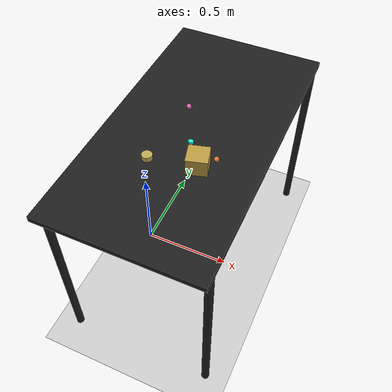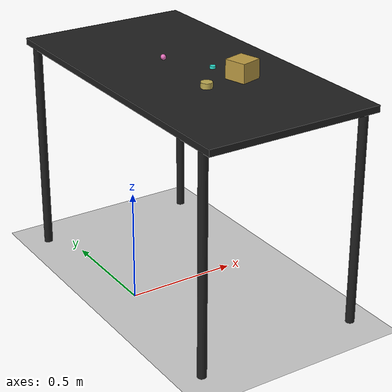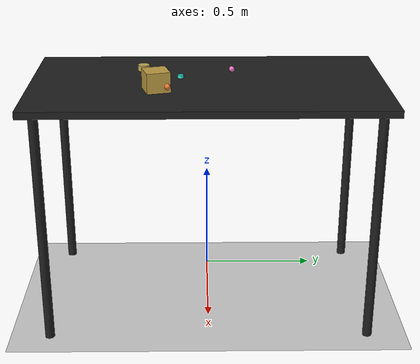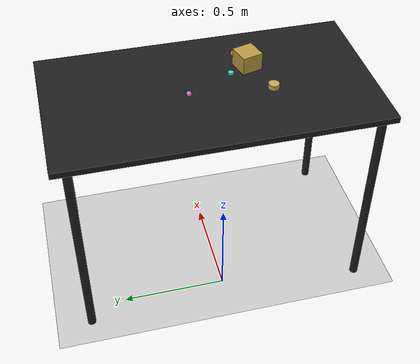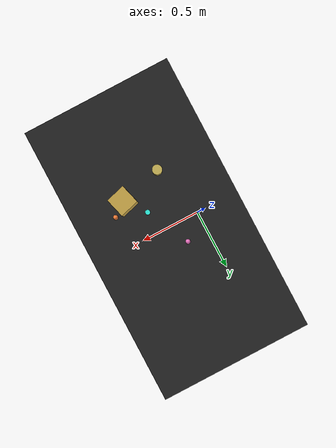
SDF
<?xml version="1.0" ?>
<sdf version="1.6">
  <world name="arm_world">
    <plugin filename="gz-sim-physics-system" name="gz::sim::systems::Physics">
      <engine>
        <filename>libgz-physics-bullet-featherstone-plugin.so</filename>
      </engine>
    </plugin>
    <plugin filename="gz-sim-user-commands-system" name="gz::sim::systems::UserCommands"/>
    <plugin filename="gz-sim-scene-broadcaster-system" name="gz::sim::systems::SceneBroadcaster"/>
    <plugin filename="gz-sim-sensors-system" name="gz::sim::systems::Sensors">
      <render_engine>ogre2</render_engine>
    </plugin>
    <gravity>0.0 0.0 -9.8</gravity>
    <scene>
      <shadows>false</shadows>
    </scene>
    <gui>
      <camera name="user_camera">
        <pose>0.75 -0.75 1.4 0 0.29 2.21</pose>
      </camera>
    </gui>
    <include>
      <uri>https://fuel.gazebosim.org/1.0/OpenRobotics/models/Sun</uri>
    </include>
    <model name="table">
      <static>true</static>
      <include>
        <uri>model://table</uri>
      </include>
      <pose>0.29 0 0 0 0 1.5708</pose>
    </model>
    <model name="ground_plane">
      <static>true</static>
      <link name="link">
        <collision name="collision">
          <geometry>
            <plane>
              <normal>0 0 1</normal>
            </plane>
          </geometry>
          <surface>
            <friction>
              <ode>
                <mu>1.0</mu>
                <mu2>1.0</mu2>
              </ode>
            </friction>
          </surface>
        </collision>
        <visual name="visual">
          <geometry>
            <plane>
              <normal>0 0 1</normal>
              <size>100 100</size>
            </plane>
          </geometry>
          <material>
            <ambient>0.8 0.8 0.8 1</ambient>
            <diffuse>0.8 0.8 0.8 1</diffuse>
            <specular>0.8 0.8 0.8 1</specular>
          </material>
        </visual>
      </link>
    </model>
    <model name="cylinder_m_0">
      <pose>0.194 -0.274 1.05 0 0 1.06</pose>
      <link name="cylinder_m_0_link">
        <collision name="cylinder_m_0_collision">
          <geometry>
            <cylinder>
              <radius>0.025</radius>
              <length>0.025</length>
            </cylinder>
          </geometry>
        </collision>
        <visual name="cylinder_m_0_visual">
          <geometry>
            <cylinder>
              <radius>0.025</radius>
              <length>0.025</length>
            </cylinder>
          </geometry>
          <material>
            <ambient>0.75 0.67 0.32 1</ambient>
            <diffuse>0.75 0.67 0.32 1</diffuse>
          </material>
        </visual>
        <velocity_decay>
          <linear>1</linear>
          <angular>1</angular>
        </velocity_decay>
      </link>
    </model>
    <model name="sphere_s_1">
      <pose>0.48 -0.164 1.05 0 0 3.12</pose>
      <link name="sphere_s_1_link">
        <collision name="sphere_s_1_collision">
          <geometry>
            <sphere>
              <radius>0.0125</radius>
            </sphere>
          </geometry>
        </collision>
        <visual name="sphere_s_1_visual">
          <geometry>
            <sphere>
              <radius>0.0125</radius>
            </sphere>
          </geometry>
          <material>
            <ambient>0.94 0.48 0.21 1</ambient>
            <diffuse>0.94 0.48 0.21 1</diffuse>
          </material>
        </visual>
        <velocity_decay>
          <linear>1</linear>
          <angular>1</angular>
        </velocity_decay>
      </link>
    </model>
    <model name="cylinder_s_2">
      <pose>0.331 -0.113 1.05 0 0 5.79</pose>
      <link name="cylinder_s_2_link">
        <collision name="cylinder_s_2_collision">
          <geometry>
            <cylinder>
              <radius>0.0125</radius>
              <length>0.0125</length>
            </cylinder>
          </geometry>
        </collision>
        <visual name="cylinder_s_2_visual">
          <geometry>
            <cylinder>
              <radius>0.0125</radius>
              <length>0.0125</length>
            </cylinder>
          </geometry>
          <material>
            <ambient>0.17 0.9 0.83 1</ambient>
            <diffuse>0.17 0.9 0.83 1</diffuse>
          </material>
        </visual>
        <velocity_decay>
          <linear>1</linear>
          <angular>1</angular>
        </velocity_decay>
      </link>
    </model>
    <model name="cube_l_3">
      <pose>0.411 -0.213 1.05 0 0 3.41</pose>
      <link name="cube_l_3_link">
        <collision name="cube_l_3_collision">
          <geometry>
            <box>
              <size>0.1 0.1 0.1</size>
            </box>
          </geometry>
        </collision>
        <visual name="cube_l_3_visual">
          <geometry>
            <box>
              <size>0.1 0.1 0.1</size>
            </box>
          </geometry>
          <material>
            <ambient>0.74 0.61 0.26 1</ambient>
            <diffuse>0.74 0.61 0.26 1</diffuse>
          </material>
        </visual>
        <velocity_decay>
          <linear>1</linear>
          <angular>1</angular>
        </velocity_decay>
      </link>
    </model>
    <model name="sphere_s_4">
      <pose>0.224 0.104 1.05 0 0 5.12</pose>
      <link name="sphere_s_4_link">
        <collision name="sphere_s_4_collision">
          <geometry>
            <sphere>
              <radius>0.0125</radius>
            </sphere>
          </geometry>
        </collision>
        <visual name="sphere_s_4_visual">
          <geometry>
            <sphere>
              <radius>0.0125</radius>
            </sphere>
          </geometry>
          <material>
            <ambient>0.89 0.43 0.73 1</ambient>
            <diffuse>0.89 0.43 0.73 1</diffuse>
          </material>
        </visual>
        <velocity_decay>
          <linear>1</linear>
          <angular>1</angular>
        </velocity_decay>
      </link>
    </model>
  </world>
</sdf>

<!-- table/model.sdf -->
<sdf version="1.5">
  <model name="table">
    <static>true</static>
    <link name="link">
      <collision name="surface">
        <pose>0 0 1.0 0 0 0</pose>
        <geometry>
          <box>
            <size>1.5 0.8 0.03</size>
          </box>
        </geometry>
        <surface>
          <friction>
            <ode>
              <mu>0.6</mu>
              <mu2>0.6</mu2>
            </ode>
          </friction>
        </surface>
      </collision>
      <visual name="surface">
        <pose>0 0 1.0 0 0 0</pose>
        <geometry>
          <box>
            <size>1.5 0.8 0.03</size>
          </box>
        </geometry>
        <material>
          <script>
            <uri>file://media/materials/scripts/gazebo.material</uri>
            <name>Gazebo/Black</name>
          </script>
        </material>
      </visual>
      <collision name="front_left_leg">
        <pose>0.68 0.38 0.5 0 0 0</pose>
        <geometry>
          <cylinder>
            <radius>0.02</radius>
            <length>1.0</length>
          </cylinder>
        </geometry>
      </collision>
      <visual name="front_left_leg">
        <pose>0.68 0.38 0.5 0 0 0</pose>
        <geometry>
          <cylinder>
            <radius>0.02</radius>
            <length>1.0</length>
          </cylinder>
        </geometry>
        <material>
          <script>
            <uri>file://media/materials/scripts/gazebo.material</uri>
            <name>Gazebo/Black</name>
          </script>
        </material>
      </visual>
      <collision name="front_right_leg">
        <pose>0.68 -0.38 0.5 0 0 0</pose>
        <geometry>
          <cylinder>
            <radius>0.02</radius>
            <length>1.0</length>
          </cylinder>
        </geometry>
      </collision>
      <visual name="front_right_leg">
        <pose>0.68 -0.38 0.5 0 0 0</pose>
        <geometry>
          <cylinder>
            <radius>0.02</radius>
            <length>1.0</length>
          </cylinder>
        </geometry>
        <material>
          <script>
            <uri>file://media/materials/scripts/gazebo.material</uri>
            <name>Gazebo/Black</name>
          </script>
        </material>
      </visual>
      <collision name="back_right_leg">
        <pose>-0.68 -0.38 0.5 0 0 0</pose>
        <geometry>
          <cylinder>
            <radius>0.02</radius>
            <length>1.0</length>
          </cylinder>
        </geometry>
      </collision>
      <visual name="back_right_leg">
        <pose>-0.68 -0.38 0.5 0 0 0</pose>
        <geometry>
          <cylinder>
            <radius>0.02</radius>
            <length>1.0</length>
          </cylinder>
        </geometry>
        <material>
          <script>
            <uri>file://media/materials/scripts/gazebo.material</uri>
            <name>Gazebo/Black</name>
          </script>
        </material>
      </visual>
      <collision name="back_left_leg">
        <pose>-0.68 0.38 0.5 0 0 0</pose>
        <geometry>
          <cylinder>
            <radius>0.02</radius>
            <length>1.0</length>
          </cylinder>
        </geometry>
      </collision>
      <visual name="back_left_leg">
        <pose>-0.68 0.38 0.5 0 0 0</pose>
        <geometry>
          <cylinder>
            <radius>0.02</radius>
            <length>1.0</length>
          </cylinder>
        </geometry>
        <material>
          <script>
            <uri>file://media/materials/scripts/gazebo.material</uri>
            <name>Gazebo/Black</name>
          </script>
        </material>
      </visual>
    </link>
  </model>
</sdf>
